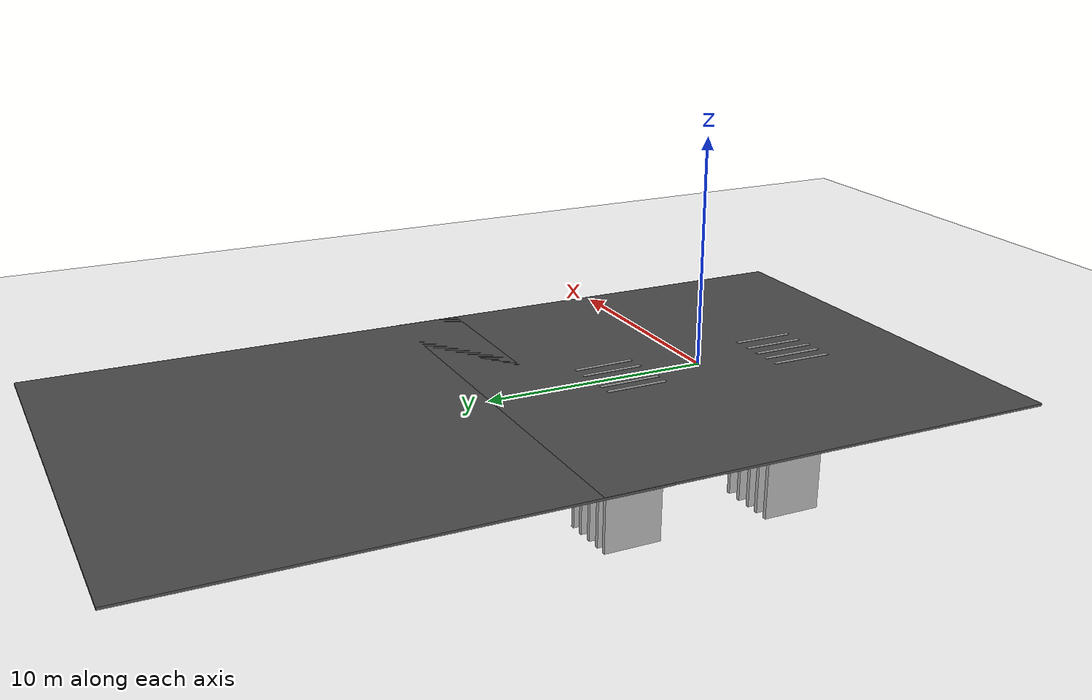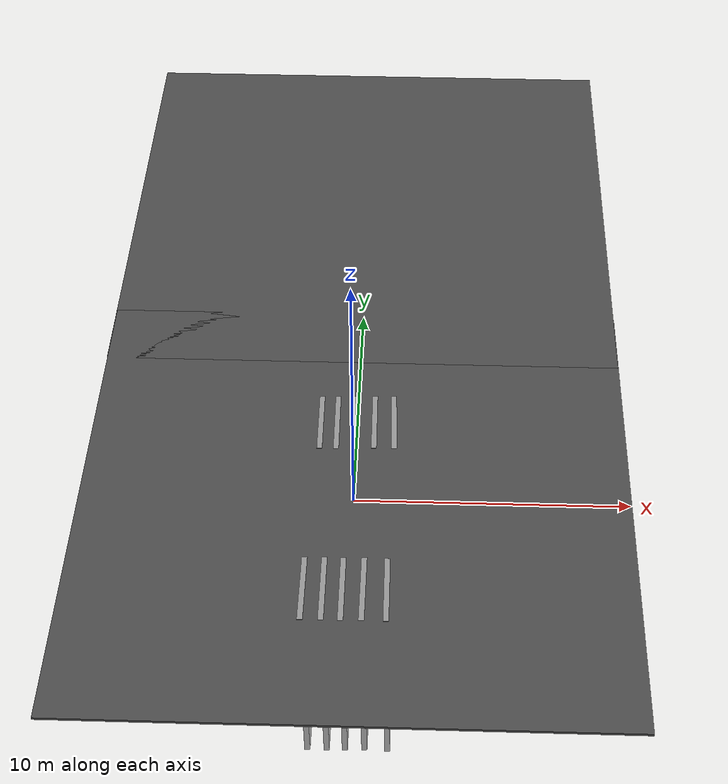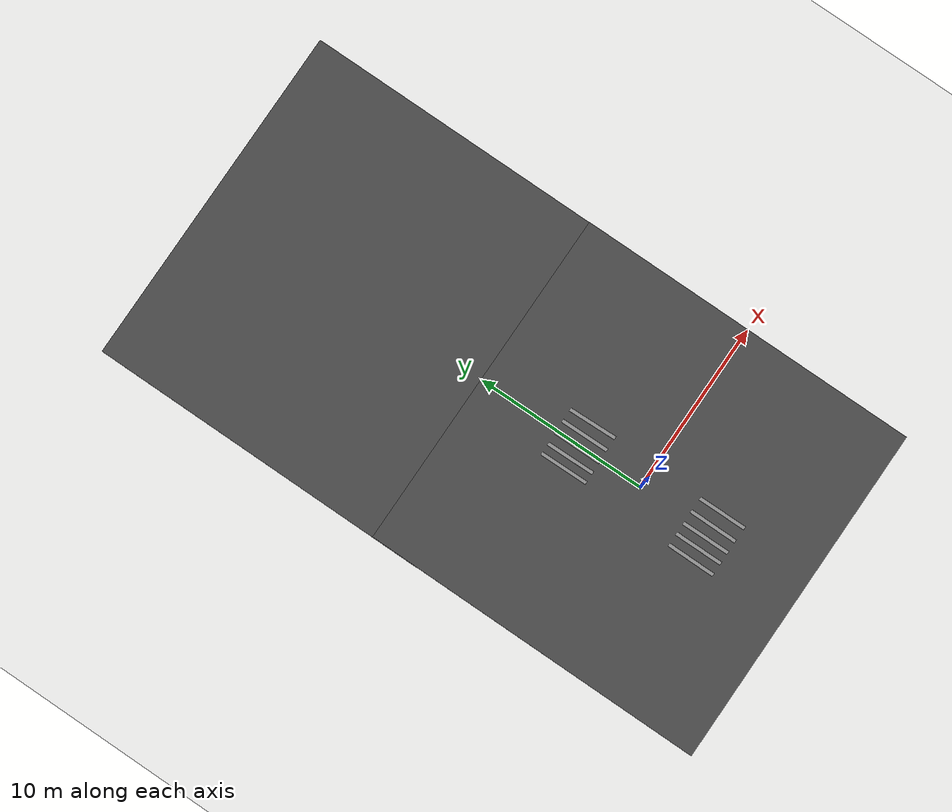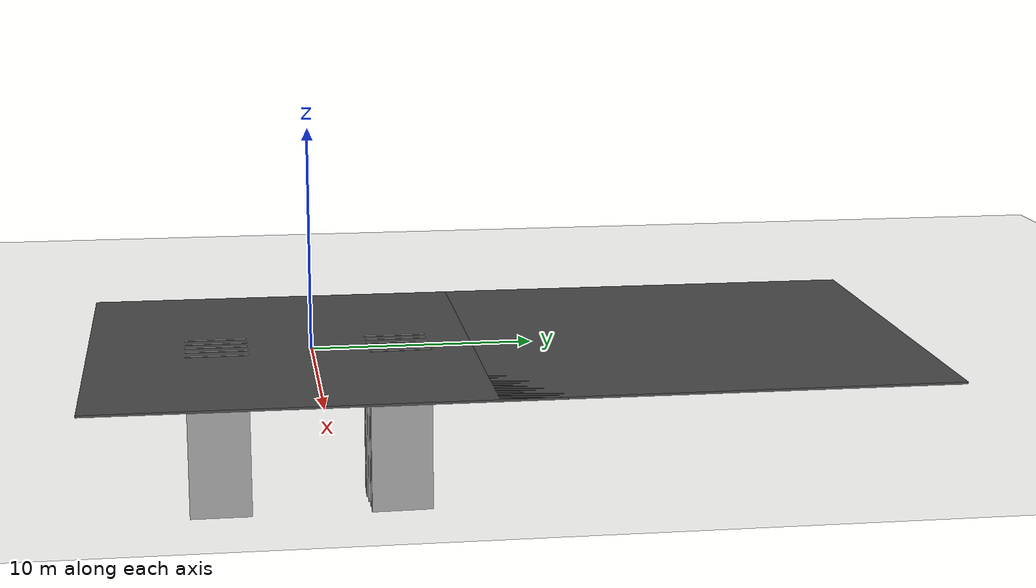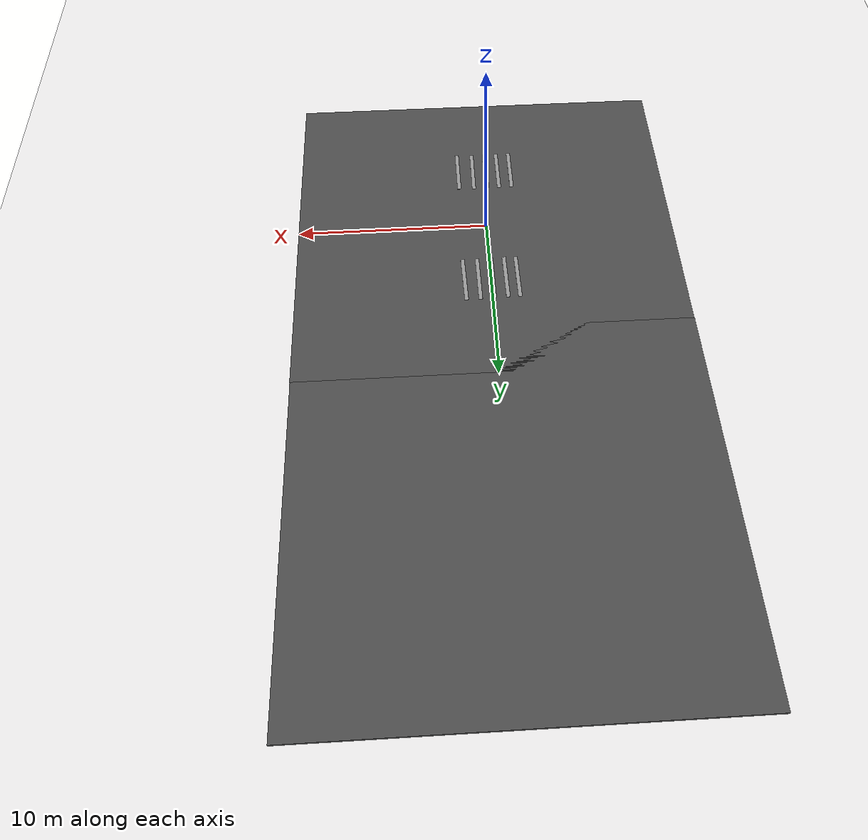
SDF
<sdf version="1.6">
 <world name="default">
  <light name="sun" type="directional">
   <pose>0 0 10 0 -0 0</pose>
   <diffuse>0.8 0.8 0.8 1</diffuse>
   <specular>0.2 0.2 0.2 1</specular>
   <attenuation>
    <range>1000</range>
    <constant>0.9</constant>
    <linear>0.01</linear>
    <quadratic>0.001</quadratic>
   </attenuation>
   <direction>-0.5 0.1 -0.9</direction>
  </light>
  <model name="ground_plane">
   <static>1</static>
   <link name="link">
    <collision name="collision">
     <geometry><plane><normal>0 0 1</normal><size>100 100</size></plane></geometry>
     <surface>
      <contact><collide_bitmask>65535</collide_bitmask></contact>
      <friction><ode><mu>100</mu><mu2>50</mu2></ode></friction>
     </surface>
    </collision>
    <visual name="visual">
     <cast_shadows>0</cast_shadows>
     <geometry><plane><normal>0 0 1</normal><size>100 100</size></plane></geometry>
     <material>
      <script><uri>file://media/materials/scripts/gazebo.material</uri><name>Gazebo/Grey</name></script>
     </material>
    </visual>
   </link>
  </model>
  <gravity>0 0 -9.8</gravity>
  <magnetic_field>6e-06 2.3e-05 -4.2e-05</magnetic_field>
  <atmosphere type="adiabatic"/>
  <physics name="default_physics" default="0" type="ode">
   <max_step_size>0.001</max_step_size>
   <real_time_factor>1</real_time_factor>
   <real_time_update_rate>1000</real_time_update_rate>
  </physics>
  <scene><ambient>0.4 0.4 0.4 1</ambient><background>0.7 0.7 0.7 1</background><shadows>1</shadows></scene>
  <audio><device>default</device></audio>
  <spherical_coordinates>
   <surface_model>EARTH_WGS84</surface_model>
   <latitude_deg>0</latitude_deg>
   <longitude_deg>0</longitude_deg>
   <elevation>0</elevation>
   <heading_deg>0</heading_deg>
  </spherical_coordinates>
  <model name="asphalt_plane">
   <static>1</static>
   <link name="link">
    <collision name="collision"><geometry><box><size>20 20 0.1</size></box></geometry></collision>
    <visual name="visual">
     <cast_shadows>0</cast_shadows>
     <geometry><box><size>20 20 0.1</size></box></geometry>
     <material>
      <script>
       <uri>model://asphalt_plane/materials/scripts</uri>
       <uri>model://asphalt_plane/materials/textures</uri>
       <name>vrc/asphalt</name>
      </script>
     </material>
    </visual>
   </link>
   <pose>0.027313 0.038573 0.093028 0 -0 0</pose>
  </model>
  <model name="grey_wall_clone_2_clone_clone_clone">
   <static>1</static>
   <link name="link">
    <pose>0 0 1.4 0 -0 0</pose>
    <collision name="collision"><geometry><box><size>7.5 0.2 2.8</size></box></geometry></collision>
    <visual name="visual">
     <cast_shadows>0</cast_shadows>
     <geometry><box><size>7.5 0.2 2.8</size></box></geometry>
     <material>
      <script>
       <uri>model://grey_wall/materials/scripts</uri>
       <uri>model://grey_wall/materials/textures</uri>
       <name>vrc/grey_wall</name>
      </script>
     </material>
    </visual>
   </link>
   <pose>-1.56736 -5.67057 -3.59599 -1.57004 1.56125 -3e-06</pose>
  </model>
  <model name="grey_wall_clone_2_clone_clone_clone_0">
   <static>1</static>
   <link name="link">
    <pose>0 0 1.4 0 -0 0</pose>
    <collision name="collision"><geometry><box><size>7.5 0.2 2.8</size></box></geometry></collision>
    <visual name="visual">
     <cast_shadows>0</cast_shadows>
     <geometry><box><size>7.5 0.2 2.8</size></box></geometry>
     <material>
      <script>
       <uri>model://grey_wall/materials/scripts</uri>
       <uri>model://grey_wall/materials/textures</uri>
       <name>vrc/grey_wall</name>
      </script>
     </material>
    </visual>
   </link>
   <pose>-0.858182 -5.66572 -3.59599 -1.57463 1.56125 2e-06</pose>
  </model>
  <model name="grey_wall_clone_2_clone_clone_clone_1">
   <static>1</static>
   <link name="link">
    <pose>0 0 1.4 0 -0 0</pose>
    <collision name="collision"><geometry><box><size>7.5 0.2 2.8</size></box></geometry></collision>
    <visual name="visual">
     <cast_shadows>0</cast_shadows>
     <geometry><box><size>7.5 0.2 2.8</size></box></geometry>
     <material>
      <script>
       <uri>model://grey_wall/materials/scripts</uri>
       <uri>model://grey_wall/materials/textures</uri>
       <name>vrc/grey_wall</name>
      </script>
     </material>
    </visual>
   </link>
   <pose>-0.190347 -5.66534 -3.59599 -1.57604 1.56125 -4e-06</pose>
  </model>
  <model name="grey_wall_clone_2_clone_clone_clone_2">
   <static>1</static>
   <link name="link">
    <pose>0 0 1.4 0 -0 0</pose>
    <collision name="collision"><geometry><box><size>7.5 0.2 2.8</size></box></geometry></collision>
    <visual name="visual">
     <cast_shadows>0</cast_shadows>
     <geometry><box><size>7.5 0.2 2.8</size></box></geometry>
     <material>
      <script>
       <uri>model://grey_wall/materials/scripts</uri>
       <uri>model://grey_wall/materials/textures</uri>
       <name>vrc/grey_wall</name>
      </script>
     </material>
    </visual>
   </link>
   <pose>0.521846 -5.64378 -3.59599 -1.56897 1.56125 -6e-06</pose>
  </model>
  <model name="grey_wall_clone_2_clone_clone_clone_2_clone">
   <static>1</static>
   <link name="link">
    <pose>0 0 1.4 0 -0 0</pose>
    <collision name="collision"><geometry><box><size>7.5 0.2 2.8</size></box></geometry></collision>
    <visual name="visual">
     <cast_shadows>0</cast_shadows>
     <geometry><box><size>7.5 0.2 2.8</size></box></geometry>
     <material>
      <script>
       <uri>model://grey_wall/materials/scripts</uri>
       <uri>model://grey_wall/materials/textures</uri>
       <name>vrc/grey_wall</name>
      </script>
     </material>
    </visual>
   </link>
   <pose>1.35801 -5.65715 -3.59599 -1.57798 1.56125 -1e-06</pose>
  </model>
  <model name="grey_wall_clone_2_clone_clone_clone_2_clone_0">
   <static>1</static>
   <link name="link">
    <pose>0 0 1.4 0 -0 0</pose>
    <collision name="collision"><geometry><box><size>7.5 0.2 2.8</size></box></geometry></collision>
    <visual name="visual">
     <cast_shadows>0</cast_shadows>
     <geometry><box><size>7.5 0.2 2.8</size></box></geometry>
     <material>
      <script>
       <uri>model://grey_wall/materials/scripts</uri>
       <uri>model://grey_wall/materials/textures</uri>
       <name>vrc/grey_wall</name>
      </script>
     </material>
    </visual>
   </link>
   <pose>-1.34491 2.45851 -3.59599 -1.58245 1.56125 3e-06</pose>
  </model>
  <model name="grey_wall_clone_2_clone_clone_clone_2_clone_1">
   <static>1</static>
   <link name="link">
    <pose>0 0 1.4 0 -0 0</pose>
    <collision name="collision"><geometry><box><size>7.5 0.2 2.8</size></box></geometry></collision>
    <visual name="visual">
     <cast_shadows>0</cast_shadows>
     <geometry><box><size>7.5 0.2 2.8</size></box></geometry>
     <material>
      <script>
       <uri>model://grey_wall/materials/scripts</uri>
       <uri>model://grey_wall/materials/textures</uri>
       <name>vrc/grey_wall</name>
      </script>
     </material>
    </visual>
   </link>
   <pose>-0.729822 2.4637 -3.59599 -1.58378 1.56125 3e-06</pose>
  </model>
  <model name="grey_wall_clone_2_clone_clone_clone_2_clone_2">
   <static>1</static>
   <link name="link">
    <pose>0 0 1.4 0 -0 0</pose>
    <collision name="collision"><geometry><box><size>7.5 0.2 2.8</size></box></geometry></collision>
    <visual name="visual">
     <cast_shadows>0</cast_shadows>
     <geometry><box><size>7.5 0.2 2.8</size></box></geometry>
     <material>
      <script>
       <uri>model://grey_wall/materials/scripts</uri>
       <uri>model://grey_wall/materials/textures</uri>
       <name>vrc/grey_wall</name>
      </script>
     </material>
    </visual>
   </link>
   <pose>-0.057517 2.49188 -3.59599 -1.57294 1.56125 -7e-06</pose>
  </model>
  <model name="grey_wall_clone_2_clone_clone_clone_2_clone_3">
   <static>1</static>
   <link name="link">
    <pose>0 0 1.4 0 -0 0</pose>
    <collision name="collision"><geometry><box><size>7.5 0.2 2.8</size></box></geometry></collision>
    <visual name="visual">
     <cast_shadows>0</cast_shadows>
     <geometry><box><size>7.5 0.2 2.8</size></box></geometry>
     <material>
      <script>
       <uri>model://grey_wall/materials/scripts</uri>
       <uri>model://grey_wall/materials/textures</uri>
       <name>vrc/grey_wall</name>
      </script>
     </material>
    </visual>
   </link>
   <pose>0.676682 2.52325 -3.59599 -1.58356 1.56125 1e-06</pose>
  </model>
  <model name="grey_wall_clone_2_clone_clone_clone_2_clone_4">
   <static>1</static>
   <link name="link">
    <pose>0 0 1.4 0 -0 0</pose>
    <collision name="collision"><geometry><box><size>7.5 0.2 2.8</size></box></geometry></collision>
    <visual name="visual">
     <cast_shadows>0</cast_shadows>
     <geometry><box><size>7.5 0.2 2.8</size></box></geometry>
     <material>
      <script>
       <uri>model://grey_wall/materials/scripts</uri>
       <uri>model://grey_wall/materials/textures</uri>
       <name>vrc/grey_wall</name>
      </script>
     </material>
    </visual>
   </link>
   <pose>1.43945 2.52905 -3.59599 -1.59999 1.56125 -0</pose>
  </model>
  <model name="asphalt_plane_clone">
   <static>1</static>
   <link name="link">
    <collision name="collision"><geometry><box><size>20 20 0.1</size></box></geometry></collision>
    <visual name="visual">
     <cast_shadows>0</cast_shadows>
     <geometry><box><size>20 20 0.1</size></box></geometry>
     <material>
      <script>
       <uri>model://asphalt_plane/materials/scripts</uri>
       <uri>model://asphalt_plane/materials/textures</uri>
       <name>vrc/asphalt</name>
      </script>
     </material>
    </visual>
   </link>
   <pose>0.010341 17.2029 0.093028 0 -0 0</pose>
  </model>
 </world>
</sdf>
